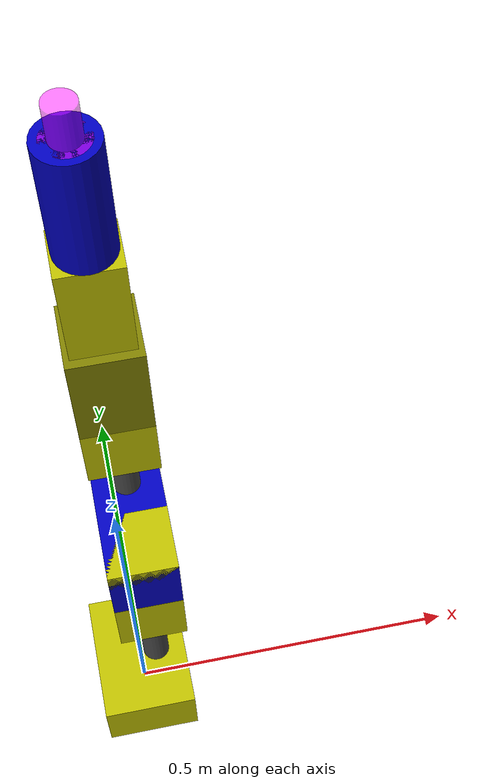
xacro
<?xml version="1.0"?>
<robot xmlns:xacro="http://www.ros.org/wiki/xacro" name="cuarm">
  <!-- math constants -->
  <xacro:property name="pi" value="3.1415926535897931" />
  <!-- staubli geometry files are in millimeters -->
  <xacro:property name="staubli_scale" value="0.001 0.001 0.001" />

  <!-- named paths -->
  <xacro:property name="staubli_geom_path" value="/home/armuser/ros/trajectory_planner/models"/>

  <!-- link macro -->
  <xacro:macro name="link_macro" params="link_name link_num origin">
    <link name="${link_name}">
    <visual>
      <geometry>
	${origin}
	<mesh filename="file:${staubli_geom_path}/staubli_${link_num}.dae" scale="${staubli_scale}"/>
      </geometry>
    </visual>
    <collision>
      <geometry>
	${origin}
	<mesh filename="file:${staubli_geom_path}/staubli_${link_num}.dae" scale="${staubli_scale}"/>
      </geometry>
    </collision>
  </link>
  </xacro:macro>

    <!-- Colors -->
    <xacro:macro name="color_blue">
        <material name="blue">
            <color rgba="0 0 0.75 1.0" />
        </material>
    </xacro:macro>

    <xacro:macro name="color_yellow">
        <material name="yellow">
            <color rgba="0.75 0.75 0 1.0" />
        </material>
    </xacro:macro>

    <xacro:macro name="color_red_green">
        <material name="red_green">
            <color rgba="1.0 1.0 0 1.0" />
        </material>
    </xacro:macro>

    <xacro:macro name="color_black">
        <material name="black">
            <color rgba="0.1 0.1 0.1 1.0" />
        </material>
    </xacro:macro>

    <xacro:macro name="color_dark_gray">
        <material name="dark_gray">
            <color rgba="0.3 0.3 0.3 1.0" />
        </material>
    </xacro:macro>

    <xacro:macro name="color_gray">
        <material name="gray">
            <color rgba="0.5 0.5 0.5 1.0" />
        </material>
    </xacro:macro>

    <xacro:macro name="color_silver">
        <material name="silver">
            <color rgba="0.9 0.9 0.9 1.0" />
        </material>
    </xacro:macro>

    <xacro:macro name="color_green">
        <material name="green">
            <color rgba="0 0.75 0.1 1.0" />
        </material>
    </xacro:macro>

    <xacro:macro name="color_olive">
        <material name="olive">
            <color rgba="0.5 0.5 0 1.0" />
        </material>
    </xacro:macro>

    <xacro:macro name="color_orange">
        <material name="orange">
            <color rgba="1.0 0.65 0 1.0" />
        </material>
    </xacro:macro>

    <xacro:macro name="color_aqua">
        <material name="aqua">
            <color rgba="0.25 0.3 0 1.0" />
        </material>
    </xacro:macro>

    <xacro:macro name="color_dark_purple">
        <material name="dark_purple">
            <color rgba="0.3 0 0.3 1.0" />
        </material>
    </xacro:macro>

    <xacro:macro name="color_magenta">
        <material name="magenta">
            <color rgba="1.0 0 1.0 0.5" />
        </material>
    </xacro:macro>

    <!-- useful macros -->
    <xacro:macro name="prism" params="name x y z *color">
        <link name="${name}">
            <visual>
                <geometry>
                    <box size="${x} ${y} ${z}" />
                </geometry>
                <xacro:insert_block name="color" />
            	<origin rpy="0 0 0" xyz="0 0 ${z/2}" />
            </visual>
            <collision>
                <geometry>
                    <box size="${x} ${y} ${z}" />
                </geometry>
            	<origin rpy="0 0 0" xyz="0 0 ${z/2}" />
            </collision>
        </link>
    </xacro:macro>

    <xacro:macro name="cyl" params="name radius length *color">
        <link name="${name}">
            <visual>
                <geometry>
                    <cylinder radius="${radius}" length="${length}" />
                </geometry>
                <xacro:insert_block name="color" />
            	<origin rpy="0 0 0" xyz="0 0 ${length/2}" />
            </visual>
            <collision>
                <geometry>
                    <cylinder radius="${radius}" length="${length}" />
                </geometry>
            	<origin rpy="0 0 0" xyz="0 0 ${length/2}" />
            </collision>
        </link>
    </xacro:macro>

    <xacro:cyl name="base_link" radius="0.02" length="0.0">
        <xacro:color_gray />
    </xacro:cyl>

    <joint name="base_joint" type="fixed">
        <origin xyz="0 0 0" rpy="0 0 0" />
        <parent link="base_link" />
        <child link="base_box" />
    </joint>

    <xacro:prism name="base_box" x="0.14" y="0.20" z="0.085">
        <xacro:color_yellow />
    </xacro:prism>

    <joint name="base_rotate" type="revolute">
        <origin xyz="0.025 0 0.085" rpy="0 0 0" />
        <axis xyz="0 0 1" />
        <parent link="base_box" />
        <child link="carbon_fiber_link" />
        <limit lower="-1.57" upper="1.57" velocity="0.3" effort="1.0" />
    </joint>

    <xacro:cyl name="carbon_fiber_link" radius=".02" length="0.14">
        <xacro:color_dark_gray />
    </xacro:cyl>

    <joint name="fixed_link_to_elbow" type="fixed">
        <origin xyz="0 0 0.14" rpy="0 0 0" />
        <parent link="carbon_fiber_link" />
        <child link="elbow_link_vertical" />
    </joint>

    <xacro:prism name="elbow_link_vertical" x="0.1" y="0.1" z="0.2">
        <xacro:color_yellow />
    </xacro:prism>

    <joint name="fixed_elbow_internal" type="fixed">
        <origin xyz="0 0.05 0.10" rpy="0 0 0" />
        <parent link="elbow_link_vertical" />
        <child link="elbow_link_horizontal" />
    </joint>

    <xacro:prism name="elbow_link_horizontal" x="0.1" y="0.2" z="0.1">
        <xacro:color_blue />
    </xacro:prism>

    <joint name="elbow_lift" type="revolute">
        <origin xyz="0 0.05 0.10" rpy="0 0 0" />
        <axis xyz="1 0 0" />
        <parent link="elbow_link_horizontal" />
        <child link="carbon_fiber_link_2" />
        <limit lower="-2.09" upper="0.52" velocity="0.3" effort="1.0" />
    </joint>

    <xacro:cyl name="carbon_fiber_link_2" radius=".02" length="0.10">
        <xacro:color_dark_gray />
    </xacro:cyl>

    <joint name="fixed_link_to_wrist" type="fixed">
        <origin xyz="0 0 0.10" rpy="0 0 0" />
        <parent link="carbon_fiber_link_2" />
        <child link="wrist_base_link" />
    </joint>

    <xacro:prism name="wrist_base_link" x="0.1" y="0.1" z="0.1">
        <xacro:color_yellow />
    </xacro:prism>

    <joint name="wrist_rotate" type="revolute">
        <origin xyz="0 0 0.10" rpy="0 0 0" />
        <axis xyz="0 0 1" />
        <parent link="wrist_base_link" />
        <child link="differential_link" />
        <limit lower="-1.57" upper="1.57" velocity="0.3" effort="1.0" />
    </joint>

    <xacro:prism name="differential_link" x="0.1" y="0.1" z="0.15">
        <xacro:color_olive />
    </xacro:prism>

    <joint name="differential_rotate" type="revolute">
        <origin xyz="0 0 0.105" rpy="0 0 0" />
        <axis xyz="0 0 1" />
        <parent link="differential_link" />
        <child link="diff_crossbar" />
        <limit lower="-1.57" upper="1.57" velocity="0.3" effort="1.0" />
    </joint>

    <xacro:prism name="diff_crossbar" x="0.0" y="0.0" z="0.0">
        <xacro:color_olive />
    </xacro:prism>

    <joint name="differential_lift" type="revolute">
        <origin xyz="0 0 0" rpy="0 0 0" />
        <axis xyz="1 0 0" />
        <parent link="diff_crossbar" />
        <child link="gripper_connect_link" />
        <limit lower="-1.57" upper="1.57" velocity="0.3" effort="1.0" />
    </joint>

    <xacro:cyl name="gripper_connect_link" radius="0.005" length="0.045">
        <xacro:color_gray />
    </xacro:cyl>

    <joint name="fixed_link_to_gripper" type="fixed">
        <origin xyz="0 0 0.045" rpy="0 0 0" />
        <parent link="gripper_connect_link" />
        <child link="gripper_frame" />
    </joint>

    <xacro:prism name="gripper_frame" x="0.085" y="0.075" z="0.15">
        <xacro:color_yellow />
    </xacro:prism>

    <joint name="fixed_link_to_hand" type="fixed">
        <origin xyz="0 0 0.15" rpy="0 0 0" />
        <parent link="gripper_frame" />
        <child link="gripper_hand" />
    </joint>

    <xacro:cyl name="gripper_hand" radius="0.04" length="0.17">
        <xacro:color_blue />
    </xacro:cyl>

    <joint name="dummy_joint" type="revolute">
        <origin xyz="0 0 0.17" rpy="0 0 0" />
        <axis xyz="1 0 0" />
        <parent link="gripper_hand" />
        <child link="gripper_dummy_link" />
        <limit lower="-1.57" upper="1.57" velocity="0.3" effort="1.0" />
    </joint>

    <xacro:cyl name="gripper_dummy_link" radius="0.03" length="0.0">
        <xacro:color_magenta />
    </xacro:cyl>

    <joint name="fixed_link_to_tip" type="fixed">
        <origin xyz="0 0 0" rpy="0 0 0" />
        <parent link="gripper_dummy_link" />
        <child link="gripper_tip" />
    </joint>

    <xacro:cyl name="gripper_tip" radius="0.02" length="0.05">
        <xacro:color_magenta />
    </xacro:cyl>
</robot>
